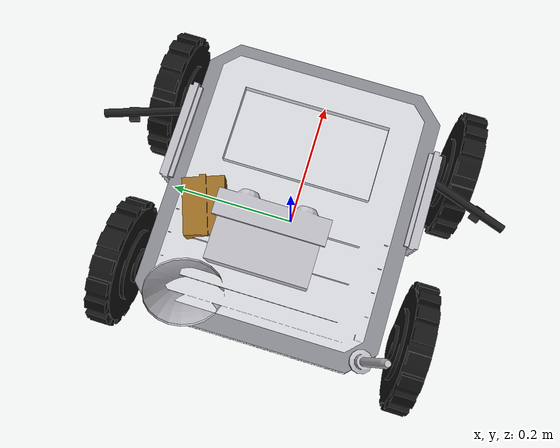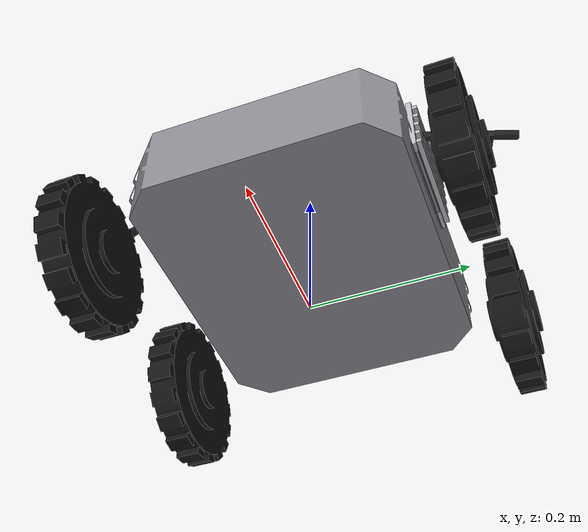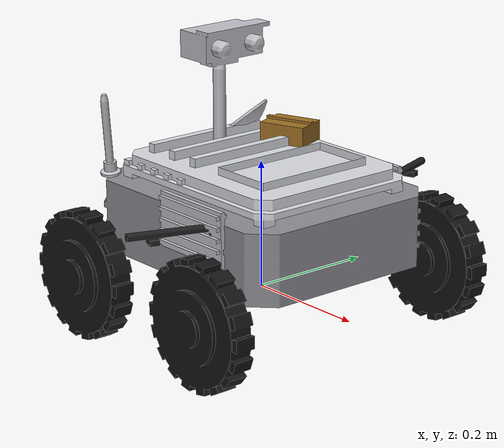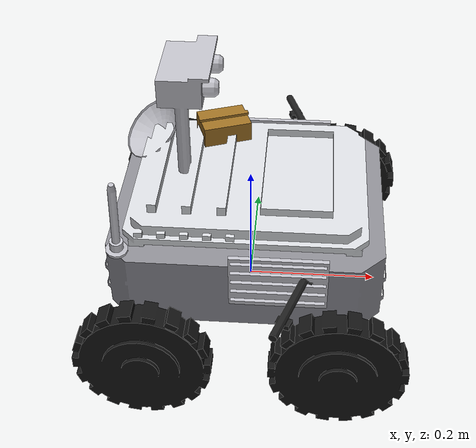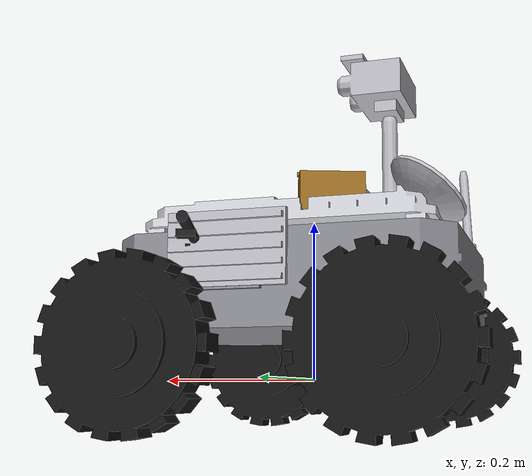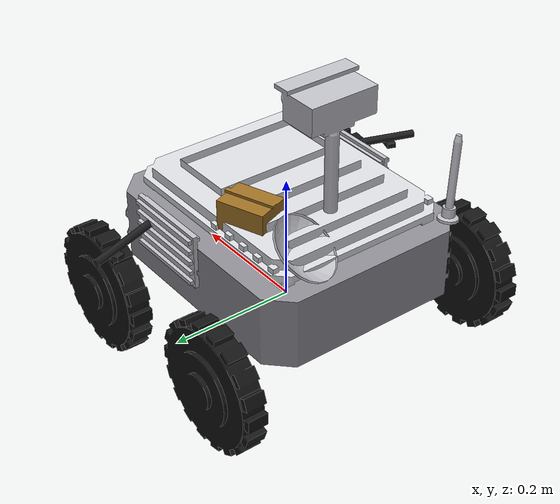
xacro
<?xml version="1.0"?>
<!-- Copyright 2026 Regolith Project contributors -->
<!-- SPDX-License-Identifier: Apache-2.0 -->
<robot name="regolith_rover" xmlns:xacro="http://www.ros.org/wiki/xacro">
  <xacro:arg name="record_video" default="false"/>

  <xacro:arg name="cine_camera" default="none"/>
  <xacro:arg name="nav_cameras" default="true"/>

  <xacro:property name="chassis_length" value="0.40"/>
  <xacro:property name="chassis_width" value="0.34"/>
  <xacro:property name="chassis_height" value="0.11"/>
  <xacro:property name="chassis_mass" value="6.0"/>
  <xacro:property name="chassis_ground_clearance" value="0.11"/>

  <xacro:property name="wheel_radius" value="0.09"/>
  <xacro:property name="wheel_width" value="0.06"/>
  <xacro:property name="wheel_mass" value="0.6"/>
  <xacro:property name="wheel_separation" value="0.46"/>
  <xacro:property name="wheelbase" value="0.28"/>

  <xacro:property name="mesh_dir" value="file://$(find regolith_rover_description)/meshes"/>

  <material name="regolith_grey">
    <color rgba="0.55 0.55 0.58 1.0"/>
  </material>
  <material name="deck_white">
    <color rgba="0.85 0.86 0.88 1.0"/>
  </material>
  <material name="composite_white">
    <color rgba="0.75 0.75 0.78 1.0"/>
  </material>
  <material name="harness_dark">
    <color rgba="0.12 0.12 0.12 1.0"/>
  </material>
  <material name="mli_gold">
    <color rgba="0.62 0.44 0.14 1.0"/>
  </material>
  <material name="wheel_black">
    <color rgba="0.08 0.08 0.08 1.0"/>
  </material>

  <link name="base_link"/>

  <joint name="base_to_chassis" type="fixed">
    <parent link="base_link"/>
    <child link="chassis"/>
    <origin xyz="0 0 ${chassis_ground_clearance}" rpy="0 0 0"/>
  </joint>

  <link name="chassis">
    <visual>
      <geometry>
        <mesh filename="${mesh_dir}/chassis_hull.obj"/>
      </geometry>
      <material name="regolith_grey"/>
    </visual>
    <visual>
      <origin xyz="0 0 0.067" rpy="0 0 0"/>
      <geometry>
        <mesh filename="${mesh_dir}/solar_deck.obj"/>
      </geometry>
      <material name="deck_white"><color rgba="0.85 0.86 0.88 1.0"/></material>
    </visual>
    <visual>
      <origin xyz="-0.10 0 0.077" rpy="0 0 0"/>
      <geometry>
        <mesh filename="${mesh_dir}/mast_assembly.obj"/>
      </geometry>
      <material name="composite_white"><color rgba="0.75 0.75 0.78 1.0"/></material>
    </visual>
    <visual>
      <!-- High-gain antenna dish, rear deck, tilted up and outboard. -->
      <origin xyz="-0.15 0.10 0.086" rpy="0.0 -0.7 0.5"/>
      <geometry>
        <mesh filename="${mesh_dir}/dish.obj"/>
      </geometry>
      <material name="composite_white"><color rgba="0.75 0.75 0.78 1.0"/></material>
    </visual>
    <visual>
      <!-- Whip antenna, rear corner. Short (0.13 m) and thick (1 cm base radius) on
           purpose - see build_whip_antenna's docstring on why a needle-thin taper
           disappears at shot scale. -->
      <origin xyz="-0.18 -0.15 0.058" rpy="0.12 0.06 0"/>
      <geometry>
        <mesh filename="${mesh_dir}/whip_antenna.obj"/>
      </geometry>
      <material name="composite_white"><color rgba="0.75 0.75 0.78 1.0"/></material>
    </visual>
    <visual>
      <origin xyz="-0.05 0.10 0.1015" rpy="0 0 0.35"/>
      <geometry>
        <mesh filename="${mesh_dir}/equipment_box.obj"/>
      </geometry>
      <material name="mli_gold"><color rgba="0.62 0.44 0.14 1.0"/></material>
    </visual>
    <visual>
      <!-- Radiator panels, flush on the +Y/-Y side faces (see build_radiator's
           docstring for why a pure yaw flip is enough to mount the same mesh on both
           sides with no extra axis remap). -->
      <origin xyz="0.05 ${chassis_width/2.0 + 0.003} -0.01" rpy="0 0 0"/>
      <geometry>
        <mesh filename="${mesh_dir}/radiator.obj"/>
      </geometry>
      <material name="composite_white"><color rgba="0.75 0.75 0.78 1.0"/></material>
    </visual>
    <visual>
      <origin xyz="0.05 ${-chassis_width/2.0 - 0.003} -0.01" rpy="0 0 3.14159"/>
      <geometry>
        <mesh filename="${mesh_dir}/radiator.obj"/>
      </geometry>
      <material name="composite_white"><color rgba="0.75 0.75 0.78 1.0"/></material>
    </visual>
    <visual>
      <!-- Cable harness run, front-right chamfer. -->
      <origin xyz="0.10 0.14 0.045" rpy="0 0 1.9"/>
      <geometry>
        <mesh filename="${mesh_dir}/cable_run.obj"/>
      </geometry>
      <material name="harness_dark"><color rgba="0.12 0.12 0.12 1.0"/></material>
    </visual>
    <visual>
      <!-- Cable harness run, front-left chamfer (mirrored). -->
      <origin xyz="0.10 -0.14 0.045" rpy="0 0 -1.9"/>
      <geometry>
        <mesh filename="${mesh_dir}/cable_run.obj"/>
      </geometry>
      <material name="harness_dark"><color rgba="0.12 0.12 0.12 1.0"/></material>
    </visual>
    <collision>
      <geometry>
        <box size="${chassis_length} ${chassis_width} ${chassis_height}"/>
      </geometry>
    </collision>
    <inertial>
      <mass value="${chassis_mass}"/>
      <inertia
        ixx="${chassis_mass * (chassis_width*chassis_width + chassis_height*chassis_height) / 12.0}"
        ixy="0"
        ixz="0"
        iyy="${chassis_mass * (chassis_length*chassis_length + chassis_height*chassis_height) / 12.0}"
        iyz="0"
        izz="${chassis_mass * (chassis_length*chassis_length + chassis_width*chassis_width) / 12.0}"
      />
    </inertial>
  </link>

  <gazebo reference="chassis">
    <visual name="chassis_atlas_material">
      <material>
        <pbr>
          <metal>
            <albedo_map>${mesh_dir}/chassis_atlas_albedo.png</albedo_map>
            <normal_map>${mesh_dir}/chassis_atlas_normal.png</normal_map>
            <roughness_map>${mesh_dir}/chassis_atlas_roughness.png</roughness_map>
            <metalness_map>${mesh_dir}/chassis_atlas_metalness.png</metalness_map>
          </metal>
        </pbr>
      </material>
    </visual>
  </gazebo>

  <xacro:macro name="wheel" params="prefix x_pos y_pos">
    <link name="${prefix}_wheel">
      <visual>
        <origin xyz="0 0 0" rpy="1.5708 0 0"/>
        <geometry>
          <mesh filename="${mesh_dir}/wheel_hub.obj"/>
        </geometry>
        <material name="wheel_black"><color rgba="0.08 0.08 0.08 1.0"/></material>
      </visual>
      <collision>
        <origin xyz="0 0 0" rpy="1.5708 0 0"/>
        <geometry>
          <cylinder radius="${wheel_radius}" length="${wheel_width}"/>
        </geometry>
      </collision>
      <inertial>
        <mass value="${wheel_mass}"/>
        <inertia
          ixx="${wheel_mass * (3*wheel_radius*wheel_radius + wheel_width*wheel_width) / 12.0}"
          ixy="0"
          ixz="0"
          iyy="${wheel_mass * (3*wheel_radius*wheel_radius + wheel_width*wheel_width) / 12.0}"
          iyz="0"
          izz="${wheel_mass * wheel_radius*wheel_radius / 2.0}"
        />
      </inertial>
    </link>

    <joint name="${prefix}_wheel_joint" type="continuous">
      <parent link="chassis"/>
      <child link="${prefix}_wheel"/>
      <origin xyz="${x_pos} ${y_pos} ${-chassis_ground_clearance + wheel_radius - chassis_height/2.0}" rpy="0 0 0"/>
      <axis xyz="0 1 0"/>
    </joint>

    <gazebo reference="${prefix}_wheel">
      <mu1>1.4</mu1>
      <mu2>1.4</mu2>
    </gazebo>
    <gazebo reference="${prefix}_wheel">
      <visual name="${prefix}_wheel_atlas_material">
        <material>
          <pbr>
            <metal>
              <albedo_map>${mesh_dir}/wheel_atlas_albedo.png</albedo_map>
              <normal_map>${mesh_dir}/wheel_atlas_normal.png</normal_map>
              <roughness_map>${mesh_dir}/wheel_atlas_roughness.png</roughness_map>
              <metalness_map>${mesh_dir}/wheel_atlas_metalness.png</metalness_map>
            </metal>
          </pbr>
        </material>
      </visual>
    </gazebo>
  </xacro:macro>

  <xacro:wheel prefix="front_left" x_pos="${wheelbase/2.0}" y_pos="${wheel_separation/2.0}"/>
  <xacro:wheel prefix="front_right" x_pos="${wheelbase/2.0}" y_pos="${-wheel_separation/2.0}"/>
  <xacro:wheel prefix="rear_left" x_pos="${-wheelbase/2.0}" y_pos="${wheel_separation/2.0}"/>
  <xacro:wheel prefix="rear_right" x_pos="${-wheelbase/2.0}" y_pos="${-wheel_separation/2.0}"/>

  <!-- IMU, rigidly mounted at the chassis centroid. -->
  <link name="imu_link"/>
  <joint name="imu_joint" type="fixed">
    <parent link="chassis"/>
    <child link="imu_link"/>
    <origin xyz="0 0 0" rpy="0 0 0"/>
  </joint>
  <gazebo reference="imu_link">
    <sensor name="imu" type="imu">
      <always_on>true</always_on>
      <update_rate>100</update_rate>
      <topic>imu</topic>
    </sensor>
  </gazebo>

  <!-- Forward-tilted RGB camera, mounted at the front of the chassis, angled slightly down. -->
  <link name="camera_link"/>
  <joint name="camera_joint" type="fixed">
    <parent link="chassis"/>
    <child link="camera_link"/>
    <origin xyz="${chassis_length/2.0} 0 ${chassis_height/2.0 + 0.03}" rpy="0 0.25 0"/>
  </joint>
  <xacro:if value="$(arg nav_cameras)">
  <gazebo reference="camera_link">
    <sensor name="camera" type="camera">
      <always_on>true</always_on>
      <update_rate>30</update_rate>
      <topic>camera</topic>
      <camera>
        <horizontal_fov>1.4</horizontal_fov>
        <image>
          <width>640</width>
          <height>480</height>
        </image>
        <clip>
          <near>0.05</near>
          <far>100</far>
        </clip>
      </camera>
      <xacro:if value="$(arg record_video)">
        <plugin filename="gz-sim-camera-video-recorder-system" name="gz::sim::systems::CameraVideoRecorder">
          <service>rover/camera/record_video</service>
        </plugin>
      </xacro:if>
    </sensor>
  </gazebo>

  <gazebo reference="camera_link">
    <sensor name="depth_camera" type="depth_camera">
      <always_on>true</always_on>
      <update_rate>10</update_rate>
      <topic>depth_camera</topic>
      <camera>
        <horizontal_fov>1.4</horizontal_fov>
        <image>
          <width>640</width>
          <height>480</height>
        </image>
        <clip>
          <near>0.05</near>
          <far>100</far>
        </clip>
      </camera>
    </sensor>
  </gazebo>
  </xacro:if>

  <!-- See the cine_camera arg at the top of this file. Rigidly fixed to the chassis,
       so the horizon pitches and rolls with the rover - that motion is the point. -->
  <xacro:macro name="cine_cam" params="name xyz rpy hfov rate service">
    <link name="${name}_link"/>
    <joint name="${name}_joint" type="fixed">
      <parent link="chassis"/>
      <child link="${name}_link"/>
      <origin xyz="${xyz}" rpy="${rpy}"/>
    </joint>
    <gazebo reference="${name}_link">
      <sensor name="${name}" type="camera">
        <always_on>true</always_on>
        <update_rate>${rate}</update_rate>
        <topic>${name}</topic>
        <camera>
          <horizontal_fov>${hfov}</horizontal_fov>
          <image>
            <width>1280</width>
            <height>720</height>
          </image>
          <clip>
            <near>0.05</near>
            <far>200</far>
          </clip>
        </camera>
        <plugin filename="gz-sim-camera-video-recorder-system" name="gz::sim::systems::CameraVideoRecorder">
          <service>${service}</service>
        </plugin>
      </sensor>
    </gazebo>
  </xacro:macro>

  <xacro:if value="${'$(arg cine_camera)' in ('onboard', 'both')}">
    <xacro:cine_cam name="cine_camera" xyz="-0.25 0 0.42" rpy="0 0.38 0" hfov="1.4" rate="30"
                    service="rover/cine/record_video"/>
  </xacro:if>
  <xacro:if value="${'$(arg cine_camera)' in ('chase', 'both')}">
    <xacro:cine_cam name="cine_chase" xyz="-2.6 0 1.1" rpy="0 0.24 0" hfov="1.3" rate="15"
                    service="rover/chase/record_video"/>
  </xacro:if>

  <gazebo>
    <allow_auto_disable>false</allow_auto_disable>
    <plugin filename="gz-sim-diff-drive-system" name="gz::sim::systems::DiffDrive">
      <left_joint>front_left_wheel_joint</left_joint>
      <left_joint>rear_left_wheel_joint</left_joint>
      <right_joint>front_right_wheel_joint</right_joint>
      <right_joint>rear_right_wheel_joint</right_joint>
      <wheel_separation>${wheel_separation}</wheel_separation>
      <wheel_radius>${wheel_radius}</wheel_radius>
      <max_linear_acceleration>0.8</max_linear_acceleration>
      <min_linear_acceleration>-0.8</min_linear_acceleration>
      <max_angular_acceleration>1.0</max_angular_acceleration>
      <min_angular_acceleration>-1.0</min_angular_acceleration>
      <max_linear_velocity>0.4</max_linear_velocity>
      <min_linear_velocity>-0.4</min_linear_velocity>
      <max_angular_velocity>0.3</max_angular_velocity>
      <min_angular_velocity>-0.3</min_angular_velocity>
      <odom_publish_frequency>50</odom_publish_frequency>
      <topic>cmd_vel</topic>
      <odom_topic>odometry</odom_topic>
      <tf_topic>pose</tf_topic>
      <frame_id>odom</frame_id>
      <child_frame_id>base_link</child_frame_id>
    </plugin>
    <plugin filename="gz-sim-joint-state-publisher-system" name="gz::sim::systems::JointStatePublisher"/>
    <plugin filename="gz-sim-imu-system" name="gz::sim::systems::Imu"/>
    <!-- Ground-truth pose, for comparison against the EKF estimate only (M3) -->
    <plugin filename="gz-sim-pose-publisher-system" name="gz::sim::systems::PosePublisher">
      <publish_link_pose>false</publish_link_pose>
      <publish_model_pose>true</publish_model_pose>
      <publish_collision_pose>false</publish_collision_pose>
      <publish_visual_pose>false</publish_visual_pose>
      <publish_nested_model_pose>false</publish_nested_model_pose>
      <use_pose_vector_msg>false</use_pose_vector_msg>
    </plugin>
  </gazebo>
</robot>
